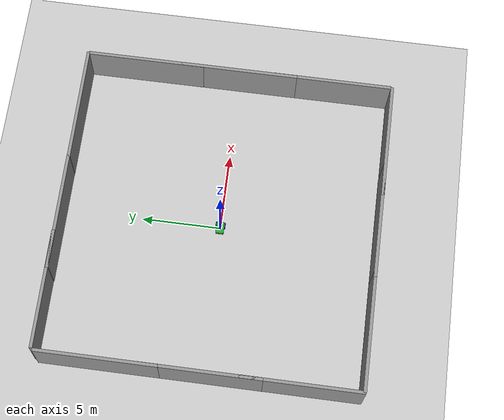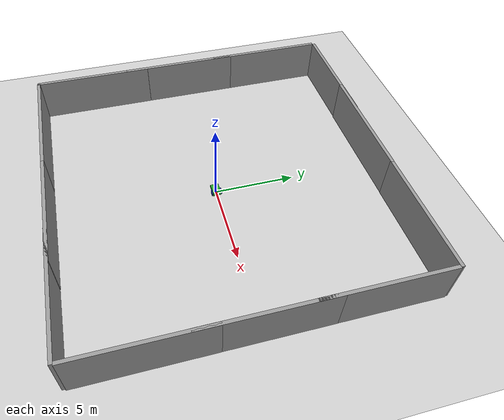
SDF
<sdf version="1.6">
 <world name="default">
  <light name="sun" type="directional">
   <pose>0 0 10 0 -0 0</pose>
   <diffuse>0.8 0.8 0.8 1</diffuse>
   <specular>0.2 0.2 0.2 1</specular>
   <attenuation>
    <range>1000</range>
    <constant>0.9</constant>
    <linear>0.01</linear>
    <quadratic>0.001</quadratic>
   </attenuation>
   <direction>-0.5 0.1 -0.9</direction>
  </light>
  <model name="ground_plane">
   <static>1</static>
   <link name="link">
    <collision name="collision">
     <geometry><plane><normal>0 0 1</normal><size>100 100</size></plane></geometry>
     <surface>
      <contact><collide_bitmask>65535</collide_bitmask></contact>
      <friction><ode><mu>100</mu><mu2>50</mu2></ode></friction>
     </surface>
    </collision>
    <visual name="visual">
     <cast_shadows>0</cast_shadows>
     <geometry><plane><normal>0 0 1</normal><size>100 100</size></plane></geometry>
     <material>
      <script><uri>file://media/materials/scripts/gazebo.material</uri><name>Gazebo/Grey</name></script>
     </material>
    </visual>
   </link>
  </model>
  <gravity>0 0 -9.8</gravity>
  <magnetic_field>6e-06 2.3e-05 -4.2e-05</magnetic_field>
  <atmosphere type="adiabatic"/>
  <physics name="default_physics" default="0" type="ode">
   <max_step_size>0.001</max_step_size>
   <real_time_factor>1</real_time_factor>
   <real_time_update_rate>1000</real_time_update_rate>
  </physics>
  <scene><ambient>0.4 0.4 0.4 1</ambient><background>0.7 0.7 0.7 1</background><shadows>1</shadows></scene>
  <audio><device>default</device></audio>
  <spherical_coordinates>
   <surface_model>EARTH_WGS84</surface_model>
   <latitude_deg>0</latitude_deg>
   <longitude_deg>0</longitude_deg>
   <elevation>0</elevation>
   <heading_deg>0</heading_deg>
  </spherical_coordinates>
  <model name="mybot">
   <link name="base_link">
    <inertial>
     <pose>-0.024456 0 0.191107 0 -0 0</pose>
     <mass>55.1</mass>
     <inertia>
      <ixx>1.27502</ixx>
      <ixy>0</ixy>
      <ixz>-0.128267</ixz>
      <iyy>2.92983</iyy>
      <iyz>0</iyz>
      <izz>2.88319</izz>
     </inertia>
    </inertial>
    <collision name="base_link_fixed_joint_lump__chassis_collision">
     <pose>0 0 0.2 0 -0 0</pose>
     <geometry><box><size>0.75 0.5 0.2</size></box></geometry>
    </collision>
    <collision name="base_link_fixed_joint_lump__camera_collision_1">
     <pose>0.275 0 0.3 0 -0 0</pose>
     <geometry><sphere><radius>0.05</radius></sphere></geometry>
    </collision>
    <collision name="base_link_fixed_joint_lump__caster_wheel_collision_2">
     <pose>-0.275 0 0.1 0 -0 0</pose>
     <geometry><sphere><radius>0.1</radius></sphere></geometry>
     <surface><friction><ode><mu>0</mu><mu2>0</mu2></ode></friction></surface>
    </collision>
    <visual name="base_link_fixed_joint_lump__chassis_visual">
     <pose>0 0 0.2 0 -0 0</pose>
     <geometry><box><size>0.75 0.5 0.2</size></box></geometry>
     <material>
      <script><name>Gazebo/Green</name><uri>file://media/materials/scripts/gazebo.material</uri></script>
     </material>
    </visual>
    <visual name="base_link_fixed_joint_lump__camera_visual_1">
     <pose>0.275 0 0.3 0 -0 0</pose>
     <geometry><sphere><radius>0.05</radius></sphere></geometry>
     <material>
      <script><name>Gazebo/White</name><uri>file://media/materials/scripts/gazebo.material</uri></script>
     </material>
    </visual>
    <visual name="base_link_fixed_joint_lump__caster_wheel_visual_2">
     <pose>-0.275 0 0.1 0 -0 0</pose>
     <geometry><sphere><radius>0.1</radius></sphere></geometry>
     <material>
      <script><name>Gazebo/Green</name><uri>file://media/materials/scripts/gazebo.material</uri></script>
     </material>
    </visual>
    <sensor name="camera1" type="camera">
     <update_rate>30</update_rate>
     <camera name="head">
      <horizontal_fov>1.39626</horizontal_fov>
      <image><width>640</width><height>320</height><format>R8G8B8</format></image>
      <clip><near>0.02</near><far>300</far></clip>
      <noise><type>gaussian</type><mean>0</mean><stddev>0.007</stddev></noise>
     </camera>
     <plugin name="camera_controller" filename="libgazebo_ros_camera.so">
      <alwaysOn>1</alwaysOn>
      <updateRate>0.0</updateRate>
      <cameraName>mybot/camera</cameraName>
      <imageTopicName>image_raw</imageTopicName>
      <cameraInfoTopicName>camera_info</cameraInfoTopicName>
      <frameName>camera</frameName>
      <hackBaseline>0.07</hackBaseline>
      <distortionK1>0.0</distortionK1>
      <distortionK2>0.0</distortionK2>
      <distortionK3>0.0</distortionK3>
      <distortionT1>0.0</distortionT1>
      <distortionT2>0.0</distortionT2>
      <robotNamespace>/</robotNamespace>
     </plugin>
     <pose>0.275 0 0.3 0 -0 0</pose>
    </sensor>
   </link>
   <link name="left_wheel">
    <pose>0.175 0.275 0.2 0 -0 0</pose>
    <inertial>
     <pose>0 0 0 1.57079 1.57079 3.14159</pose>
     <mass>5</mass>
     <inertia><ixx>0.0510417</ixx><ixy>0</ixy><ixz>0</ixz><iyy>0.0510417</iyy><iyz>0</iyz><izz>0.1</izz></inertia>
    </inertial>
    <collision name="left_wheel_collision">
     <pose>0 0 0 3.14159 1.57079 -1.57079</pose>
     <geometry><cylinder><length>0.05</length><radius>0.2</radius></cylinder></geometry>
     <surface>
      <contact><ode><kp>1e+07</kp><kd>1</kd></ode></contact>
      <friction><ode><mu>200</mu><mu2>100</mu2></ode></friction>
     </surface>
    </collision>
    <visual name="left_wheel_visual">
     <pose>0 0 0 3.14159 1.57079 -1.57079</pose>
     <geometry><cylinder><length>0.05</length><radius>0.2</radius></cylinder></geometry>
     <material>
      <script><name>Gazebo/Blue</name><uri>file://media/materials/scripts/gazebo.material</uri></script>
     </material>
    </visual>
   </link>
   <joint name="left_wheel_hinge" type="revolute">
    <child>left_wheel</child>
    <parent>base_link</parent>
    <axis>
     <xyz>0 1 0</xyz>
     <limit><lower>-1e+16</lower><upper>1e+16</upper></limit>
     <dynamics><spring_reference>0</spring_reference><spring_stiffness>0</spring_stiffness></dynamics>
     <use_parent_model_frame>1</use_parent_model_frame>
    </axis>
   </joint>
   <link name="right_wheel">
    <pose>0.175 -0.275 0.2 0 -0 0</pose>
    <inertial>
     <pose>0 0 0 1.57079 1.57079 3.14159</pose>
     <mass>5</mass>
     <inertia><ixx>0.0510417</ixx><ixy>0</ixy><ixz>0</ixz><iyy>0.0510417</iyy><iyz>0</iyz><izz>0.1</izz></inertia>
    </inertial>
    <collision name="right_wheel_collision">
     <pose>0 0 0 3.14159 1.57079 -1.57079</pose>
     <geometry><cylinder><length>0.05</length><radius>0.2</radius></cylinder></geometry>
     <surface>
      <contact><ode><kp>1e+07</kp><kd>1</kd></ode></contact>
      <friction><ode><mu>200</mu><mu2>100</mu2></ode></friction>
     </surface>
    </collision>
    <visual name="right_wheel_visual">
     <pose>0 0 0 3.14159 1.57079 -1.57079</pose>
     <geometry><cylinder><length>0.05</length><radius>0.2</radius></cylinder></geometry>
     <material>
      <script><name>Gazebo/Blue</name><uri>file://media/materials/scripts/gazebo.material</uri></script>
     </material>
    </visual>
   </link>
   <joint name="right_wheel_hinge" type="revolute">
    <child>right_wheel</child>
    <parent>base_link</parent>
    <axis>
     <xyz>0 1 0</xyz>
     <limit><lower>-1e+16</lower><upper>1e+16</upper></limit>
     <dynamics><spring_reference>0</spring_reference><spring_stiffness>0</spring_stiffness></dynamics>
     <use_parent_model_frame>1</use_parent_model_frame>
    </axis>
   </joint>
   <plugin name="gazebo_control" filename="libgazebo_ros_control.so">
    <robotNamespace>/</robotNamespace>
    <robotSimType>gazebo_ros_control/DefaultRobotHWSim</robotSimType>
    <legacyModeNS>1</legacyModeNS>
   </plugin>
   <static>0</static>
   <plugin name="differential_drive_controller" filename="libgazebo_ros_diff_drive.so">
    <alwaysOn>1</alwaysOn>
    <updateRate>100</updateRate>
    <leftJoint>left_wheel_hinge</leftJoint>
    <rightJoint>right_wheel_hinge</rightJoint>
    <wheelSeparation>0.55</wheelSeparation>
    <wheelDiameter>0.4</wheelDiameter>
    <broadcastTF>1</broadcastTF>
    <wheelTorque>30</wheelTorque>
    <wheelAcceleration>1.8</wheelAcceleration>
    <commandTopic>cmd_vel</commandTopic>
    <odometryFrame>odom</odometryFrame>
    <odometryTopic>odom</odometryTopic>
    <rosDebugLevel>Debug</rosDebugLevel>
    <publishWheelTF>0</publishWheelTF>
    <robotNamespace>/</robotNamespace>
    <publishTf>1</publishTf>
    <publishWheelJointState>0</publishWheelJointState>
    <robotBaseFrame>base_link</robotBaseFrame>
   </plugin>
   <pose>-0.012626 -0.000114 -8e-06 0 1.5e-05 0.000629</pose>
  </model>
  <model name="grey_wall">
   <static>1</static>
   <link name="link">
    <pose>0 0 1.4 0 -0 0</pose>
    <collision name="collision"><geometry><box><size>7.5 0.2 2.8</size></box></geometry></collision>
    <visual name="visual">
     <cast_shadows>0</cast_shadows>
     <geometry><box><size>7.5 0.2 2.8</size></box></geometry>
     <material>
      <script>
       <uri>model://grey_wall/materials/scripts</uri>
       <uri>model://grey_wall/materials/textures</uri>
       <name>vrc/grey_wall</name>
      </script>
     </material>
    </visual>
   </link>
   <pose>6.30479 9.96126 0 0 -0 0</pose>
  </model>
  <model name="grey_wall_0">
   <static>1</static>
   <link name="link">
    <pose>0 0 1.4 0 -0 0</pose>
    <collision name="collision"><geometry><box><size>7.5 0.2 2.8</size></box></geometry></collision>
    <visual name="visual">
     <cast_shadows>0</cast_shadows>
     <geometry><box><size>7.5 0.2 2.8</size></box></geometry>
     <material>
      <script>
       <uri>model://grey_wall/materials/scripts</uri>
       <uri>model://grey_wall/materials/textures</uri>
       <name>vrc/grey_wall</name>
      </script>
     </material>
    </visual>
   </link>
   <pose>-1.10915 9.97646 0 0 -0 0</pose>
  </model>
  <model name="grey_wall_1">
   <static>1</static>
   <link name="link">
    <pose>0 0 1.4 0 -0 0</pose>
    <collision name="collision"><geometry><box><size>7.5 0.2 2.8</size></box></geometry></collision>
    <visual name="visual">
     <cast_shadows>0</cast_shadows>
     <geometry><box><size>7.5 0.2 2.8</size></box></geometry>
     <material>
      <script>
       <uri>model://grey_wall/materials/scripts</uri>
       <uri>model://grey_wall/materials/textures</uri>
       <name>vrc/grey_wall</name>
      </script>
     </material>
    </visual>
   </link>
   <pose>-6.16696 10.0073 0 0 -0 0</pose>
  </model>
  <model name="grey_wall_2">
   <static>1</static>
   <link name="link">
    <pose>0 0 1.4 0 -0 0</pose>
    <collision name="collision"><geometry><box><size>7.5 0.2 2.8</size></box></geometry></collision>
    <visual name="visual">
     <cast_shadows>0</cast_shadows>
     <geometry><box><size>7.5 0.2 2.8</size></box></geometry>
     <material>
      <script>
       <uri>model://grey_wall/materials/scripts</uri>
       <uri>model://grey_wall/materials/textures</uri>
       <name>vrc/grey_wall</name>
      </script>
     </material>
    </visual>
   </link>
   <pose>-6.25339 -9.82244 0 0 -0 0</pose>
  </model>
  <model name="grey_wall_3">
   <static>1</static>
   <link name="link">
    <pose>0 0 1.4 0 -0 0</pose>
    <collision name="collision"><geometry><box><size>7.5 0.2 2.8</size></box></geometry></collision>
    <visual name="visual">
     <cast_shadows>0</cast_shadows>
     <geometry><box><size>7.5 0.2 2.8</size></box></geometry>
     <material>
      <script>
       <uri>model://grey_wall/materials/scripts</uri>
       <uri>model://grey_wall/materials/textures</uri>
       <name>vrc/grey_wall</name>
      </script>
     </material>
    </visual>
   </link>
   <pose>0.892909 -9.82275 0 0 -0 0</pose>
  </model>
  <model name="grey_wall_4">
   <static>1</static>
   <link name="link">
    <pose>0 0 1.4 0 -0 0</pose>
    <collision name="collision"><geometry><box><size>7.5 0.2 2.8</size></box></geometry></collision>
    <visual name="visual">
     <cast_shadows>0</cast_shadows>
     <geometry><box><size>7.5 0.2 2.8</size></box></geometry>
     <material>
      <script>
       <uri>model://grey_wall/materials/scripts</uri>
       <uri>model://grey_wall/materials/textures</uri>
       <name>vrc/grey_wall</name>
      </script>
     </material>
    </visual>
   </link>
   <pose>6.28475 -9.83983 0 0 -0 0</pose>
  </model>
  <model name="grey_wall_5_90_rotated">
   <link name="link">
    <pose>0 0 1.4 0 -0 0</pose>
    <visual name="visual">
     <cast_shadows>0</cast_shadows>
     <geometry><box><size>7.5 0.2 2.8</size></box></geometry>
     <material>
      <script>
       <uri>model://grey_wall/materials/scripts</uri>
       <uri>model://grey_wall/materials/textures</uri>
       <name>vrc/grey_wall</name>
      </script>
     </material>
    </visual>
    <collision name="collision">
     <geometry><box><size>7.5 0.2 2.8</size></box></geometry>
     <surface>
      <friction>
       <ode><mu>1</mu><mu2>1</mu2><fdir1>0 0 0</fdir1><slip1>0</slip1><slip2>0</slip2></ode>
       <torsional>
        <coefficient>1</coefficient>
        <patch_radius>0</patch_radius>
        <surface_radius>0</surface_radius>
        <use_patch_radius>1</use_patch_radius>
        <ode><slip>0</slip></ode>
       </torsional>
      </friction>
      <bounce><restitution_coefficient>0</restitution_coefficient><threshold>1e+06</threshold></bounce>
      <contact>
       <collide_without_contact>0</collide_without_contact>
       <collide_without_contact_bitmask>1</collide_without_contact_bitmask>
       <collide_bitmask>1</collide_bitmask>
       <ode>
        <soft_cfm>0</soft_cfm>
        <soft_erp>0.2</soft_erp>
        <kp>1e+13</kp>
        <kd>1</kd>
        <max_vel>0.01</max_vel>
        <min_depth>0</min_depth>
       </ode>
       <bullet>
        <split_impulse>1</split_impulse>
        <split_impulse_penetration_threshold>-0.01</split_impulse_penetration_threshold>
        <soft_cfm>0</soft_cfm>
        <soft_erp>0.2</soft_erp>
        <kp>1e+13</kp>
        <kd>1</kd>
       </bullet>
      </contact>
     </surface>
    </collision>
   </link>
   <static>1</static>
   <pose>10 6.15 0 0 -0 1.57</pose>
  </model>
  <model name="grey_wall_5_90_rotated_0">
   <link name="link">
    <pose>0 0 1.4 0 -0 0</pose>
    <visual name="visual">
     <cast_shadows>0</cast_shadows>
     <geometry><box><size>7.5 0.2 2.8</size></box></geometry>
     <material>
      <script>
       <uri>model://grey_wall/materials/scripts</uri>
       <uri>model://grey_wall/materials/textures</uri>
       <name>vrc/grey_wall</name>
      </script>
     </material>
    </visual>
    <collision name="collision">
     <geometry><box><size>7.5 0.2 2.8</size></box></geometry>
     <surface>
      <friction>
       <ode><mu>1</mu><mu2>1</mu2><fdir1>0 0 0</fdir1><slip1>0</slip1><slip2>0</slip2></ode>
       <torsional>
        <coefficient>1</coefficient>
        <patch_radius>0</patch_radius>
        <surface_radius>0</surface_radius>
        <use_patch_radius>1</use_patch_radius>
        <ode><slip>0</slip></ode>
       </torsional>
      </friction>
      <bounce><restitution_coefficient>0</restitution_coefficient><threshold>1e+06</threshold></bounce>
      <contact>
       <collide_without_contact>0</collide_without_contact>
       <collide_without_contact_bitmask>1</collide_without_contact_bitmask>
       <collide_bitmask>1</collide_bitmask>
       <ode>
        <soft_cfm>0</soft_cfm>
        <soft_erp>0.2</soft_erp>
        <kp>1e+13</kp>
        <kd>1</kd>
        <max_vel>0.01</max_vel>
        <min_depth>0</min_depth>
       </ode>
       <bullet>
        <split_impulse>1</split_impulse>
        <split_impulse_penetration_threshold>-0.01</split_impulse_penetration_threshold>
        <soft_cfm>0</soft_cfm>
        <soft_erp>0.2</soft_erp>
        <kp>1e+13</kp>
        <kd>1</kd>
       </bullet>
      </contact>
     </surface>
    </collision>
   </link>
   <static>1</static>
   <pose>10 0.069107 0 0 -0 1.57</pose>
  </model>
  <model name="grey_wall_5_90_rotated_1">
   <link name="link">
    <pose>0 0 1.4 0 -0 0</pose>
    <visual name="visual">
     <cast_shadows>0</cast_shadows>
     <geometry><box><size>7.5 0.2 2.8</size></box></geometry>
     <material>
      <script>
       <uri>model://grey_wall/materials/scripts</uri>
       <uri>model://grey_wall/materials/textures</uri>
       <name>vrc/grey_wall</name>
      </script>
     </material>
    </visual>
    <collision name="collision">
     <geometry><box><size>7.5 0.2 2.8</size></box></geometry>
     <surface>
      <friction>
       <ode><mu>1</mu><mu2>1</mu2><fdir1>0 0 0</fdir1><slip1>0</slip1><slip2>0</slip2></ode>
       <torsional>
        <coefficient>1</coefficient>
        <patch_radius>0</patch_radius>
        <surface_radius>0</surface_radius>
        <use_patch_radius>1</use_patch_radius>
        <ode><slip>0</slip></ode>
       </torsional>
      </friction>
      <bounce><restitution_coefficient>0</restitution_coefficient><threshold>1e+06</threshold></bounce>
      <contact>
       <collide_without_contact>0</collide_without_contact>
       <collide_without_contact_bitmask>1</collide_without_contact_bitmask>
       <collide_bitmask>1</collide_bitmask>
       <ode>
        <soft_cfm>0</soft_cfm>
        <soft_erp>0.2</soft_erp>
        <kp>1e+13</kp>
        <kd>1</kd>
        <max_vel>0.01</max_vel>
        <min_depth>0</min_depth>
       </ode>
       <bullet>
        <split_impulse>1</split_impulse>
        <split_impulse_penetration_threshold>-0.01</split_impulse_penetration_threshold>
        <soft_cfm>0</soft_cfm>
        <soft_erp>0.2</soft_erp>
        <kp>1e+13</kp>
        <kd>1</kd>
       </bullet>
      </contact>
     </surface>
    </collision>
   </link>
   <static>1</static>
   <pose>10 -6 0 0 -0 1.57</pose>
  </model>
  <model name="grey_wall_5_90_rotated_2">
   <link name="link">
    <pose>0 0 1.4 0 -0 0</pose>
    <visual name="visual">
     <cast_shadows>0</cast_shadows>
     <geometry><box><size>7.5 0.2 2.8</size></box></geometry>
     <material>
      <script>
       <uri>model://grey_wall/materials/scripts</uri>
       <uri>model://grey_wall/materials/textures</uri>
       <name>vrc/grey_wall</name>
      </script>
     </material>
    </visual>
    <collision name="collision">
     <geometry><box><size>7.5 0.2 2.8</size></box></geometry>
     <surface>
      <friction>
       <ode><mu>1</mu><mu2>1</mu2><fdir1>0 0 0</fdir1><slip1>0</slip1><slip2>0</slip2></ode>
       <torsional>
        <coefficient>1</coefficient>
        <patch_radius>0</patch_radius>
        <surface_radius>0</surface_radius>
        <use_patch_radius>1</use_patch_radius>
        <ode><slip>0</slip></ode>
       </torsional>
      </friction>
      <bounce><restitution_coefficient>0</restitution_coefficient><threshold>1e+06</threshold></bounce>
      <contact>
       <collide_without_contact>0</collide_without_contact>
       <collide_without_contact_bitmask>1</collide_without_contact_bitmask>
       <collide_bitmask>1</collide_bitmask>
       <ode>
        <soft_cfm>0</soft_cfm>
        <soft_erp>0.2</soft_erp>
        <kp>1e+13</kp>
        <kd>1</kd>
        <max_vel>0.01</max_vel>
        <min_depth>0</min_depth>
       </ode>
       <bullet>
        <split_impulse>1</split_impulse>
        <split_impulse_penetration_threshold>-0.01</split_impulse_penetration_threshold>
        <soft_cfm>0</soft_cfm>
        <soft_erp>0.2</soft_erp>
        <kp>1e+13</kp>
        <kd>1</kd>
       </bullet>
      </contact>
     </surface>
    </collision>
   </link>
   <static>1</static>
   <pose>-10 6.15 0 0 -0 1.57</pose>
  </model>
  <model name="grey_wall_5_90_rotated_3">
   <link name="link">
    <pose>0 0 1.4 0 -0 0</pose>
    <visual name="visual">
     <cast_shadows>0</cast_shadows>
     <geometry><box><size>7.5 0.2 2.8</size></box></geometry>
     <material>
      <script>
       <uri>model://grey_wall/materials/scripts</uri>
       <uri>model://grey_wall/materials/textures</uri>
       <name>vrc/grey_wall</name>
      </script>
     </material>
    </visual>
    <collision name="collision">
     <geometry><box><size>7.5 0.2 2.8</size></box></geometry>
     <surface>
      <friction>
       <ode><mu>1</mu><mu2>1</mu2><fdir1>0 0 0</fdir1><slip1>0</slip1><slip2>0</slip2></ode>
       <torsional>
        <coefficient>1</coefficient>
        <patch_radius>0</patch_radius>
        <surface_radius>0</surface_radius>
        <use_patch_radius>1</use_patch_radius>
        <ode><slip>0</slip></ode>
       </torsional>
      </friction>
      <bounce><restitution_coefficient>0</restitution_coefficient><threshold>1e+06</threshold></bounce>
      <contact>
       <collide_without_contact>0</collide_without_contact>
       <collide_without_contact_bitmask>1</collide_without_contact_bitmask>
       <collide_bitmask>1</collide_bitmask>
       <ode>
        <soft_cfm>0</soft_cfm>
        <soft_erp>0.2</soft_erp>
        <kp>1e+13</kp>
        <kd>1</kd>
        <max_vel>0.01</max_vel>
        <min_depth>0</min_depth>
       </ode>
       <bullet>
        <split_impulse>1</split_impulse>
        <split_impulse_penetration_threshold>-0.01</split_impulse_penetration_threshold>
        <soft_cfm>0</soft_cfm>
        <soft_erp>0.2</soft_erp>
        <kp>1e+13</kp>
        <kd>1</kd>
       </bullet>
      </contact>
     </surface>
    </collision>
   </link>
   <static>1</static>
   <pose>-10 -0.098968 0 0 -0 1.57</pose>
  </model>
  <model name="grey_wall_5_90_rotated_4">
   <link name="link">
    <pose>0 0 1.4 0 -0 0</pose>
    <visual name="visual">
     <cast_shadows>0</cast_shadows>
     <geometry><box><size>7.5 0.2 2.8</size></box></geometry>
     <material>
      <script>
       <uri>model://grey_wall/materials/scripts</uri>
       <uri>model://grey_wall/materials/textures</uri>
       <name>vrc/grey_wall</name>
      </script>
     </material>
    </visual>
    <collision name="collision">
     <geometry><box><size>7.5 0.2 2.8</size></box></geometry>
     <surface>
      <friction>
       <ode><mu>1</mu><mu2>1</mu2><fdir1>0 0 0</fdir1><slip1>0</slip1><slip2>0</slip2></ode>
       <torsional>
        <coefficient>1</coefficient>
        <patch_radius>0</patch_radius>
        <surface_radius>0</surface_radius>
        <use_patch_radius>1</use_patch_radius>
        <ode><slip>0</slip></ode>
       </torsional>
      </friction>
      <bounce><restitution_coefficient>0</restitution_coefficient><threshold>1e+06</threshold></bounce>
      <contact>
       <collide_without_contact>0</collide_without_contact>
       <collide_without_contact_bitmask>1</collide_without_contact_bitmask>
       <collide_bitmask>1</collide_bitmask>
       <ode>
        <soft_cfm>0</soft_cfm>
        <soft_erp>0.2</soft_erp>
        <kp>1e+13</kp>
        <kd>1</kd>
        <max_vel>0.01</max_vel>
        <min_depth>0</min_depth>
       </ode>
       <bullet>
        <split_impulse>1</split_impulse>
        <split_impulse_penetration_threshold>-0.01</split_impulse_penetration_threshold>
        <soft_cfm>0</soft_cfm>
        <soft_erp>0.2</soft_erp>
        <kp>1e+13</kp>
        <kd>1</kd>
       </bullet>
      </contact>
     </surface>
    </collision>
   </link>
   <static>1</static>
   <pose>-10 -6.15 0 0 -0 1.57</pose>
  </model>
 </world>
</sdf>
